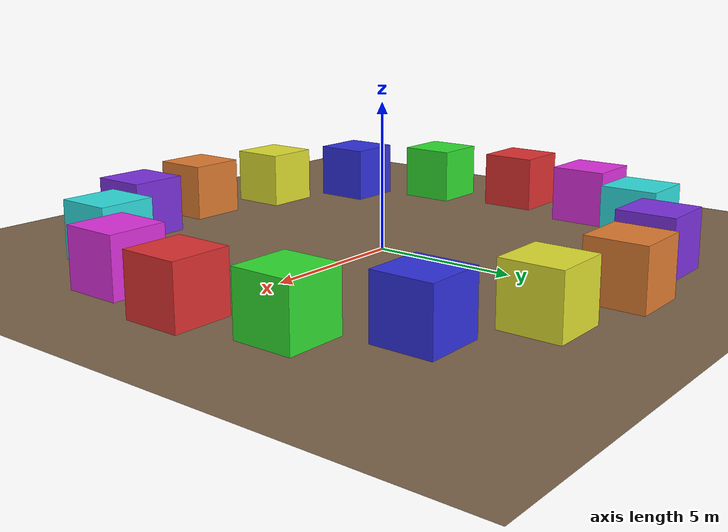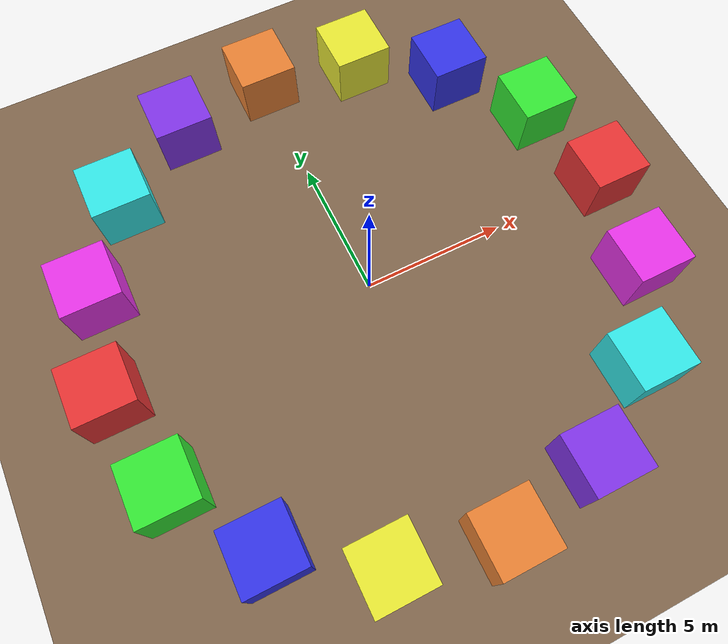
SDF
<?xml version="1.0" ?>
<sdf version="1.10"><world name="bf">
<plugin filename="gz-sim-physics-system" name="gz::sim::systems::Physics"/>
<plugin filename="gz-sim-sensors-system" name="gz::sim::systems::Sensors"><render_engine>ogre2</render_engine></plugin>
<plugin filename="gz-sim-scene-broadcaster-system" name="gz::sim::systems::SceneBroadcaster"/>
<scene><ambient>1 1 1 1</ambient><background>0.3 0.7 0.9 1</background><grid>false</grid></scene>
<light name="sun" type="directional"><pose>0 0 10 0 0 0</pose><cast_shadows>false</cast_shadows><diffuse>1 1 1 1</diffuse><direction>-0.3 0.2 -0.9</direction></light>
<model name="ground"><static>true</static><link name="l"><visual name="v"><geometry><plane><normal>0 0 1</normal><size>200 200</size></plane></geometry><material><diffuse>0.5 0.4 0.3 1</diffuse></material></visual></link></model>
<model name="b0"><static>true</static><pose>9.00 0.00 1 0 0 0</pose><link name="l"><visual name="v"><geometry><box><size>2 2 2</size></box></geometry><material><diffuse>0.9 0.2 0.2 1</diffuse></material></visual></link></model>
<model name="b1"><static>true</static><pose>8.31 3.44 1 0 0 0</pose><link name="l"><visual name="v"><geometry><box><size>2 2 2</size></box></geometry><material><diffuse>0.2 0.9 0.2 1</diffuse></material></visual></link></model>
<model name="b2"><static>true</static><pose>6.36 6.36 1 0 0 0</pose><link name="l"><visual name="v"><geometry><box><size>2 2 2</size></box></geometry><material><diffuse>0.2 0.2 0.9 1</diffuse></material></visual></link></model>
<model name="b3"><static>true</static><pose>3.44 8.31 1 0 0 0</pose><link name="l"><visual name="v"><geometry><box><size>2 2 2</size></box></geometry><material><diffuse>0.9 0.9 0.2 1</diffuse></material></visual></link></model>
<model name="b4"><static>true</static><pose>0.00 9.00 1 0 0 0</pose><link name="l"><visual name="v"><geometry><box><size>2 2 2</size></box></geometry><material><diffuse>0.9 0.5 0.2 1</diffuse></material></visual></link></model>
<model name="b5"><static>true</static><pose>-3.44 8.31 1 0 0 0</pose><link name="l"><visual name="v"><geometry><box><size>2 2 2</size></box></geometry><material><diffuse>0.5 0.2 0.9 1</diffuse></material></visual></link></model>
<model name="b6"><static>true</static><pose>-6.36 6.36 1 0 0 0</pose><link name="l"><visual name="v"><geometry><box><size>2 2 2</size></box></geometry><material><diffuse>0.2 0.9 0.9 1</diffuse></material></visual></link></model>
<model name="b7"><static>true</static><pose>-8.31 3.44 1 0 0 0</pose><link name="l"><visual name="v"><geometry><box><size>2 2 2</size></box></geometry><material><diffuse>0.9 0.2 0.9 1</diffuse></material></visual></link></model>
<model name="b8"><static>true</static><pose>-9.00 0.00 1 0 0 0</pose><link name="l"><visual name="v"><geometry><box><size>2 2 2</size></box></geometry><material><diffuse>0.9 0.2 0.2 1</diffuse></material></visual></link></model>
<model name="b9"><static>true</static><pose>-8.31 -3.44 1 0 0 0</pose><link name="l"><visual name="v"><geometry><box><size>2 2 2</size></box></geometry><material><diffuse>0.2 0.9 0.2 1</diffuse></material></visual></link></model>
<model name="b10"><static>true</static><pose>-6.36 -6.36 1 0 0 0</pose><link name="l"><visual name="v"><geometry><box><size>2 2 2</size></box></geometry><material><diffuse>0.2 0.2 0.9 1</diffuse></material></visual></link></model>
<model name="b11"><static>true</static><pose>-3.44 -8.31 1 0 0 0</pose><link name="l"><visual name="v"><geometry><box><size>2 2 2</size></box></geometry><material><diffuse>0.9 0.9 0.2 1</diffuse></material></visual></link></model>
<model name="b12"><static>true</static><pose>-0.00 -9.00 1 0 0 0</pose><link name="l"><visual name="v"><geometry><box><size>2 2 2</size></box></geometry><material><diffuse>0.9 0.5 0.2 1</diffuse></material></visual></link></model>
<model name="b13"><static>true</static><pose>3.44 -8.31 1 0 0 0</pose><link name="l"><visual name="v"><geometry><box><size>2 2 2</size></box></geometry><material><diffuse>0.5 0.2 0.9 1</diffuse></material></visual></link></model>
<model name="b14"><static>true</static><pose>6.36 -6.36 1 0 0 0</pose><link name="l"><visual name="v"><geometry><box><size>2 2 2</size></box></geometry><material><diffuse>0.2 0.9 0.9 1</diffuse></material></visual></link></model>
<model name="b15"><static>true</static><pose>8.31 -3.44 1 0 0 0</pose><link name="l"><visual name="v"><geometry><box><size>2 2 2</size></box></geometry><material><diffuse>0.9 0.2 0.9 1</diffuse></material></visual></link></model>
<model name="c0m"><static>true</static><pose>0 0 1 0 0 0.00000</pose><link name="l"><sensor name="rgbd_camera" type="rgbd_camera"><topic>c0</topic><always_on>1</always_on><update_rate>5</update_rate><camera><horizontal_fov>1.25</horizontal_fov><image><width>320</width><height>240</height></image><clip><near>0.3</near><far>100</far></clip></camera></sensor></link></model>
<model name="c10m"><static>true</static><pose>0 0 1 0 0 0.17453</pose><link name="l"><sensor name="rgbd_camera" type="rgbd_camera"><topic>c10</topic><always_on>1</always_on><update_rate>5</update_rate><camera><horizontal_fov>1.25</horizontal_fov><image><width>320</width><height>240</height></image><clip><near>0.3</near><far>100</far></clip></camera></sensor></link></model>
<model name="c20m"><static>true</static><pose>0 0 1 0 0 0.34907</pose><link name="l"><sensor name="rgbd_camera" type="rgbd_camera"><topic>c20</topic><always_on>1</always_on><update_rate>5</update_rate><camera><horizontal_fov>1.25</horizontal_fov><image><width>320</width><height>240</height></image><clip><near>0.3</near><far>100</far></clip></camera></sensor></link></model>
<model name="c30m"><static>true</static><pose>0 0 1 0 0 0.52360</pose><link name="l"><sensor name="rgbd_camera" type="rgbd_camera"><topic>c30</topic><always_on>1</always_on><update_rate>5</update_rate><camera><horizontal_fov>1.25</horizontal_fov><image><width>320</width><height>240</height></image><clip><near>0.3</near><far>100</far></clip></camera></sensor></link></model>
<model name="c40m"><static>true</static><pose>0 0 1 0 0 0.69813</pose><link name="l"><sensor name="rgbd_camera" type="rgbd_camera"><topic>c40</topic><always_on>1</always_on><update_rate>5</update_rate><camera><horizontal_fov>1.25</horizontal_fov><image><width>320</width><height>240</height></image><clip><near>0.3</near><far>100</far></clip></camera></sensor></link></model>
<model name="c50m"><static>true</static><pose>0 0 1 0 0 0.87266</pose><link name="l"><sensor name="rgbd_camera" type="rgbd_camera"><topic>c50</topic><always_on>1</always_on><update_rate>5</update_rate><camera><horizontal_fov>1.25</horizontal_fov><image><width>320</width><height>240</height></image><clip><near>0.3</near><far>100</far></clip></camera></sensor></link></model>
<model name="c60m"><static>true</static><pose>0 0 1 0 0 1.04720</pose><link name="l"><sensor name="rgbd_camera" type="rgbd_camera"><topic>c60</topic><always_on>1</always_on><update_rate>5</update_rate><camera><horizontal_fov>1.25</horizontal_fov><image><width>320</width><height>240</height></image><clip><near>0.3</near><far>100</far></clip></camera></sensor></link></model>
<model name="c70m"><static>true</static><pose>0 0 1 0 0 1.22173</pose><link name="l"><sensor name="rgbd_camera" type="rgbd_camera"><topic>c70</topic><always_on>1</always_on><update_rate>5</update_rate><camera><horizontal_fov>1.25</horizontal_fov><image><width>320</width><height>240</height></image><clip><near>0.3</near><far>100</far></clip></camera></sensor></link></model>
<model name="c80m"><static>true</static><pose>0 0 1 0 0 1.39626</pose><link name="l"><sensor name="rgbd_camera" type="rgbd_camera"><topic>c80</topic><always_on>1</always_on><update_rate>5</update_rate><camera><horizontal_fov>1.25</horizontal_fov><image><width>320</width><height>240</height></image><clip><near>0.3</near><far>100</far></clip></camera></sensor></link></model>
<model name="c90m"><static>true</static><pose>0 0 1 0 0 1.57080</pose><link name="l"><sensor name="rgbd_camera" type="rgbd_camera"><topic>c90</topic><always_on>1</always_on><update_rate>5</update_rate><camera><horizontal_fov>1.25</horizontal_fov><image><width>320</width><height>240</height></image><clip><near>0.3</near><far>100</far></clip></camera></sensor></link></model>
</world></sdf>
